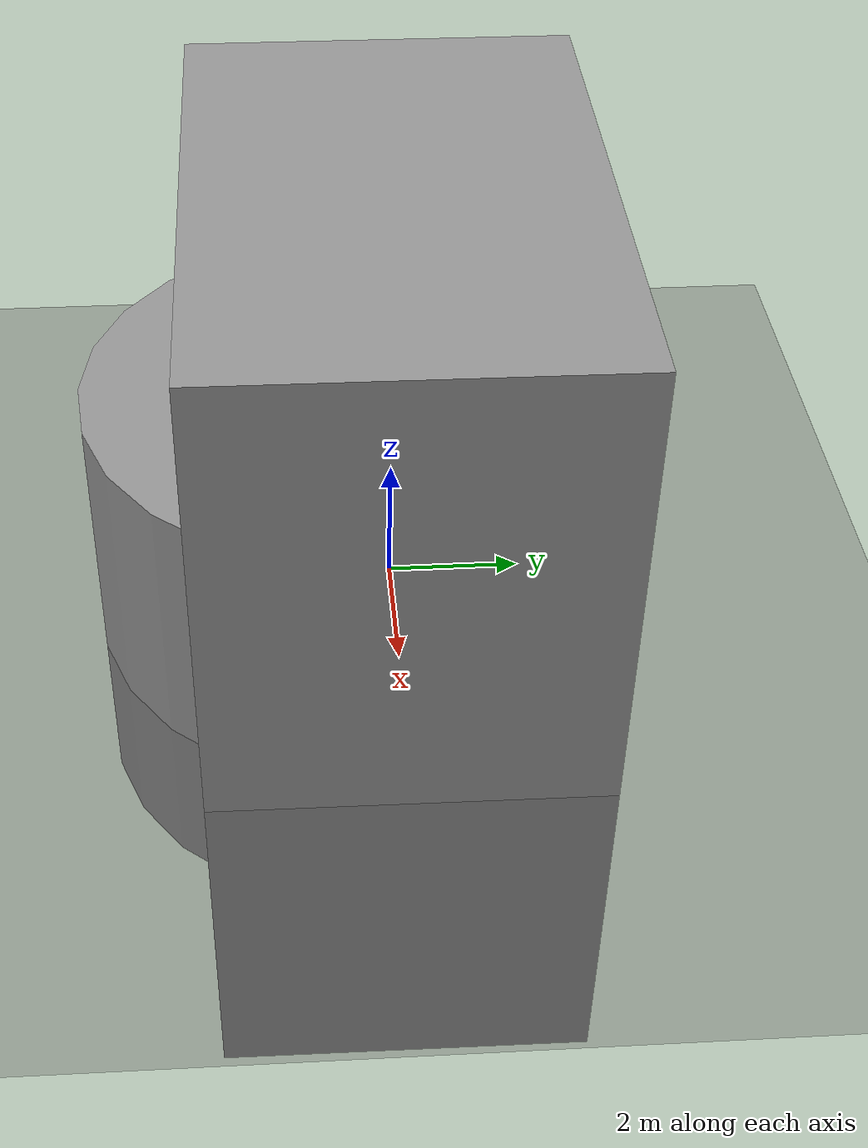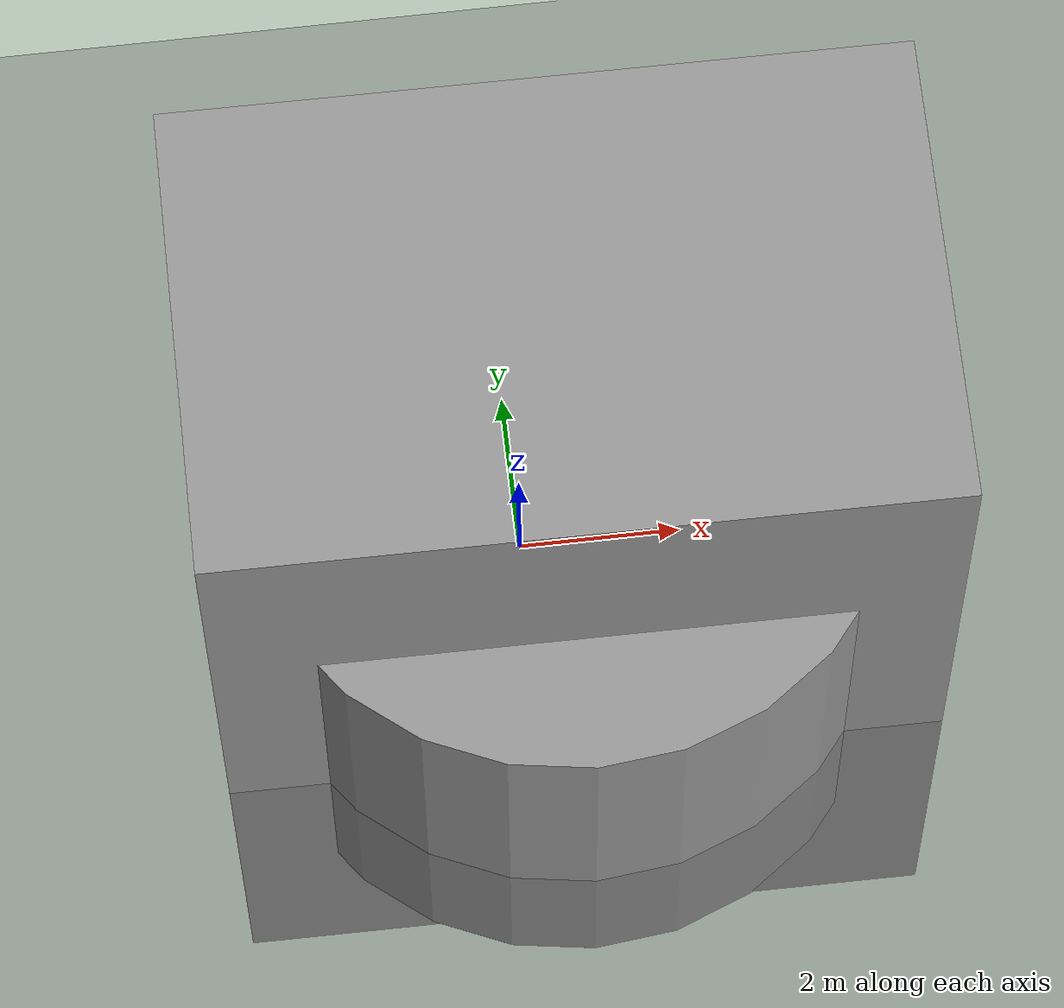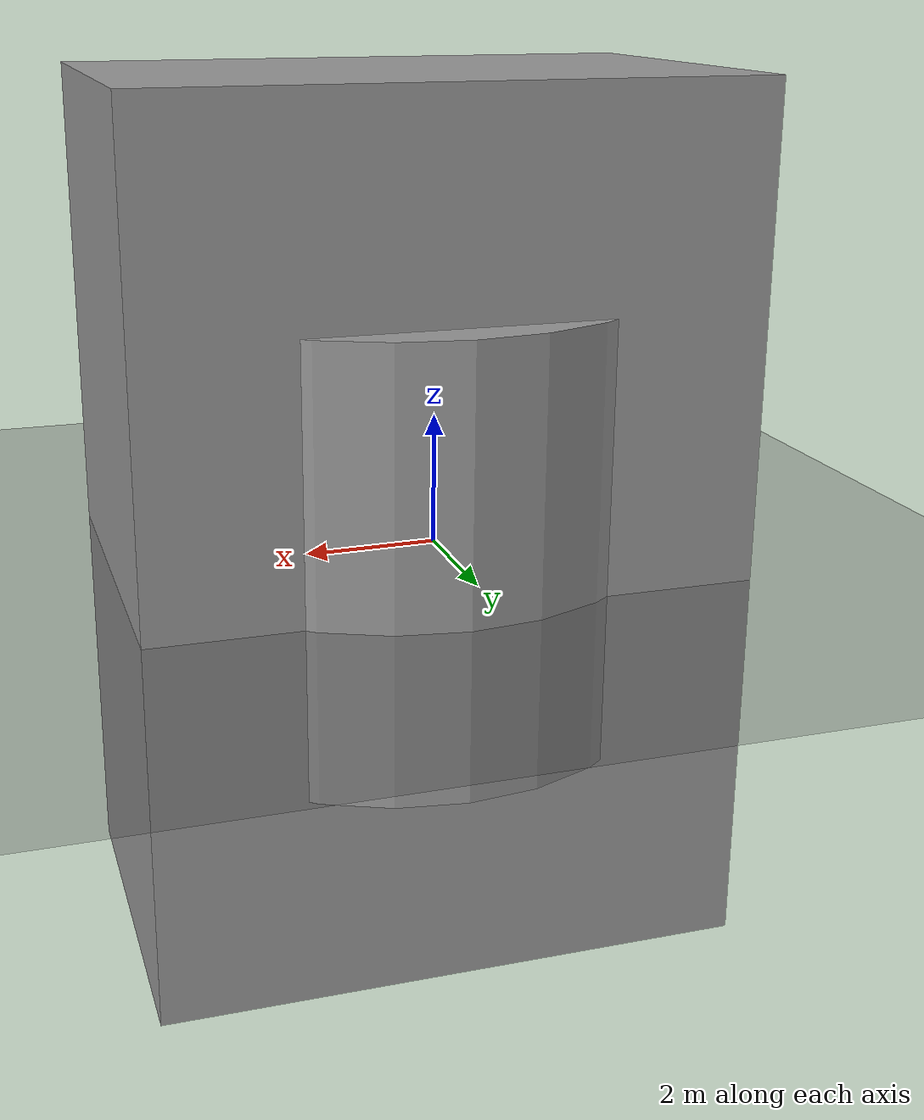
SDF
<sdf version="1.6">
 <world name="default">
  <light name="sun" type="directional">
   <pose>0 0 10 0 -0 0</pose>
   <diffuse>0.8 0.8 0.8 1</diffuse>
   <specular>0.2 0.2 0.2 1</specular>
   <attenuation>
    <range>1000</range>
    <constant>0.9</constant>
    <linear>0.01</linear>
    <quadratic>0.001</quadratic>
   </attenuation>
   <direction>-0.5 0.1 -0.9</direction>
  </light>
  <model name="ground_plane">
   <static>1</static>
   <link name="link">
    <collision name="collision">
     <geometry><plane><normal>0 0 1</normal><size>100 100</size></plane></geometry>
     <surface><friction><ode><mu>100</mu><mu2>50</mu2></ode></friction></surface>
    </collision>
    <visual name="visual">
     <cast_shadows>0</cast_shadows>
     <geometry><plane><normal>0 0 1</normal><size>100 100</size></plane></geometry>
     <material>
      <script><uri>file://media/materials/scripts/gazebo.material</uri><name>Gazebo/DarkGrey</name></script>
     </material>
    </visual>
   </link>
  </model>
  <gravity>0 0 -9.8</gravity>
  <magnetic_field>6e-06 2.3e-05 -4.2e-05</magnetic_field>
  <atmosphere type="adiabatic"/>
  <physics name="default_physics" default="0" type="ode">
   <max_step_size>0.001</max_step_size>
   <real_time_factor>1</real_time_factor>
   <real_time_update_rate>1000</real_time_update_rate>
  </physics>
  <scene><ambient>0.4 0.4 0.4 1</ambient><background>0.7 0.7 0.7 1</background><shadows>1</shadows></scene>
  <spherical_coordinates>
   <surface_model>EARTH_WGS84</surface_model>
   <latitude_deg>0</latitude_deg>
   <longitude_deg>0</longitude_deg>
   <elevation>0</elevation>
   <heading_deg>0</heading_deg>
  </spherical_coordinates>
  <model name="dropbox">
   <link name="link_0">
    <pose>0 -0 0 0 0 -1.56873</pose>
    <inertial>
     <mass>1</mass>
     <inertia>
      <ixx>0.166667</ixx>
      <ixy>0</ixy>
      <ixz>0</ixz>
      <iyy>0.166667</iyy>
      <iyz>0</iyz>
      <izz>0.166667</izz>
     </inertia>
    </inertial>
    <visual name="visual">
     <geometry><mesh><uri>model://dropbox/meshes/dropbox.dae</uri><scale>1 1 1</scale></mesh></geometry>
     <material>
      <lighting>1</lighting>
      <script><uri>file://media/materials/scripts/gazebo.material</uri><name>Gazebo/Grey</name></script>
      <ambient>0 0.3 0.3 1</ambient>
      <diffuse>0 0.7 0.7 1</diffuse>
      <specular>0 0.01 0.01 1</specular>
      <emissive>0 0 0 1</emissive>
     </material>
    </visual>
    <collision name="collision">
     <geometry><mesh><uri>model://dropbox/meshes/dropbox.dae</uri><scale>1 1 1</scale></mesh></geometry>
     <surface>
      <friction>
       <ode><mu>1</mu><mu2>1</mu2><fdir1>0 0 0</fdir1><slip1>0</slip1><slip2>0</slip2></ode>
       <torsional>
        <coefficient>1</coefficient>
        <patch_radius>0</patch_radius>
        <surface_radius>0</surface_radius>
        <use_patch_radius>1</use_patch_radius>
        <ode><slip>0</slip></ode>
       </torsional>
      </friction>
      <bounce><restitution_coefficient>0</restitution_coefficient><threshold>1e+06</threshold></bounce>
      <contact>
       <collide_without_contact>0</collide_without_contact>
       <collide_without_contact_bitmask>1</collide_without_contact_bitmask>
       <collide_bitmask>1</collide_bitmask>
       <ode>
        <soft_cfm>0</soft_cfm>
        <soft_erp>0.2</soft_erp>
        <kp>1e+13</kp>
        <kd>1</kd>
        <max_vel>0.01</max_vel>
        <min_depth>0</min_depth>
       </ode>
       <bullet>
        <split_impulse>1</split_impulse>
        <split_impulse_penetration_threshold>-0.01</split_impulse_penetration_threshold>
        <soft_cfm>0</soft_cfm>
        <soft_erp>0.2</soft_erp>
        <kp>1e+13</kp>
        <kd>1</kd>
       </bullet>
      </contact>
     </surface>
    </collision>
   </link>
   <static>1</static>
   <pose>1 -0.35 0.605 0 -0 1.57</pose>
  </model>
  <model name="dropbox_clone">
   <link name="link_0">
    <pose>0 -0 0 0 0 -1.56873</pose>
    <inertial>
     <mass>1</mass>
     <inertia>
      <ixx>0.166667</ixx>
      <ixy>0</ixy>
      <ixz>0</ixz>
      <iyy>0.166667</iyy>
      <iyz>0</iyz>
      <izz>0.166667</izz>
     </inertia>
    </inertial>
    <visual name="visual">
     <geometry><mesh><uri>model://dropbox/meshes/dropbox.dae</uri><scale>1 1 1</scale></mesh></geometry>
     <material>
      <lighting>1</lighting>
      <script><uri>file://media/materials/scripts/gazebo.material</uri><name>Gazebo/Grey</name></script>
      <ambient>0.3 0 0.1 1</ambient>
      <diffuse>0.7 0 0.2 1</diffuse>
      <specular>0.01 0 0.01 1</specular>
      <emissive>0 0 0 1</emissive>
     </material>
    </visual>
    <collision name="collision">
     <geometry><mesh><uri>model://dropbox/meshes/dropbox.dae</uri><scale>1 1 1</scale></mesh></geometry>
     <surface>
      <friction>
       <ode><mu>1</mu><mu2>1</mu2><fdir1>0 0 0</fdir1><slip1>0</slip1><slip2>0</slip2></ode>
       <torsional>
        <coefficient>1</coefficient>
        <patch_radius>0</patch_radius>
        <surface_radius>0</surface_radius>
        <use_patch_radius>1</use_patch_radius>
        <ode><slip>0</slip></ode>
       </torsional>
      </friction>
      <bounce><restitution_coefficient>0</restitution_coefficient><threshold>1e+06</threshold></bounce>
      <contact>
       <collide_without_contact>0</collide_without_contact>
       <collide_without_contact_bitmask>1</collide_without_contact_bitmask>
       <collide_bitmask>1</collide_bitmask>
       <ode>
        <soft_cfm>0</soft_cfm>
        <soft_erp>0.2</soft_erp>
        <kp>1e+13</kp>
        <kd>1</kd>
        <max_vel>0.01</max_vel>
        <min_depth>0</min_depth>
       </ode>
       <bullet>
        <split_impulse>1</split_impulse>
        <split_impulse_penetration_threshold>-0.01</split_impulse_penetration_threshold>
        <soft_cfm>0</soft_cfm>
        <soft_erp>0.2</soft_erp>
        <kp>1e+13</kp>
        <kd>1</kd>
       </bullet>
      </contact>
     </surface>
    </collision>
   </link>
   <static>1</static>
   <pose>1 0.45 0.605 0 -0 1.57</pose>
  </model>
  <model name="short_table">
   <link name="link_0">
    <inertial>
     <mass>1</mass>
     <inertia>
      <ixx>0.166667</ixx>
      <ixy>0</ixy>
      <ixz>0</ixz>
      <iyy>0.166667</iyy>
      <iyz>0</iyz>
      <izz>0.166667</izz>
     </inertia>
    </inertial>
    <visual name="visual">
     <geometry><mesh><uri>model://short_table/meshes/short_table.dae</uri><scale>1 1 1</scale></mesh></geometry>
     <material>
      <lighting>1</lighting>
      <script><uri>file://media/materials/scripts/gazebo.material</uri><name>Gazebo/DarkGray</name></script>
     </material>
    </visual>
    <collision name="collision">
     <geometry><mesh><uri>model://short_table/meshes/short_table.dae</uri><scale>1 1 1</scale></mesh></geometry>
     <surface>
      <friction>
       <ode><mu>1</mu><mu2>1</mu2><fdir1>0 0 0</fdir1><slip1>0</slip1><slip2>0</slip2></ode>
       <torsional>
        <coefficient>1</coefficient>
        <patch_radius>0</patch_radius>
        <surface_radius>0</surface_radius>
        <use_patch_radius>1</use_patch_radius>
        <ode><slip>0</slip></ode>
       </torsional>
      </friction>
      <bounce><restitution_coefficient>0</restitution_coefficient><threshold>1e+06</threshold></bounce>
      <contact>
       <collide_without_contact>0</collide_without_contact>
       <collide_without_contact_bitmask>1</collide_without_contact_bitmask>
       <collide_bitmask>1</collide_bitmask>
       <ode>
        <soft_cfm>0</soft_cfm>
        <soft_erp>0.2</soft_erp>
        <kp>1e+13</kp>
        <kd>1</kd>
        <max_vel>0.01</max_vel>
        <min_depth>0</min_depth>
       </ode>
       <bullet>
        <split_impulse>1</split_impulse>
        <split_impulse_penetration_threshold>-0.01</split_impulse_penetration_threshold>
        <soft_cfm>0</soft_cfm>
        <soft_erp>0.2</soft_erp>
        <kp>1e+13</kp>
        <kd>1</kd>
       </bullet>
      </contact>
     </surface>
    </collision>
   </link>
   <static>1</static>
   <pose>0.6 0.45 0 0 -0 0</pose>
  </model>
  <model name="short_table_clone">
   <link name="link_0">
    <inertial>
     <mass>1</mass>
     <inertia>
      <ixx>0.166667</ixx>
      <ixy>0</ixy>
      <ixz>0</ixz>
      <iyy>0.166667</iyy>
      <iyz>0</iyz>
      <izz>0.166667</izz>
     </inertia>
    </inertial>
    <visual name="visual">
     <geometry><mesh><uri>model://short_table/meshes/short_table.dae</uri><scale>1 1 1</scale></mesh></geometry>
     <material>
      <lighting>1</lighting>
      <script><uri>file://media/materials/scripts/gazebo.material</uri><name>Gazebo/DarkGray</name></script>
     </material>
    </visual>
    <collision name="collision">
     <geometry><mesh><uri>model://short_table/meshes/short_table.dae</uri><scale>1 1 1</scale></mesh></geometry>
     <surface>
      <friction>
       <ode><mu>1</mu><mu2>1</mu2><fdir1>0 0 0</fdir1><slip1>0</slip1><slip2>0</slip2></ode>
       <torsional>
        <coefficient>1</coefficient>
        <patch_radius>0</patch_radius>
        <surface_radius>0</surface_radius>
        <use_patch_radius>1</use_patch_radius>
        <ode><slip>0</slip></ode>
       </torsional>
      </friction>
      <bounce><restitution_coefficient>0</restitution_coefficient><threshold>1e+06</threshold></bounce>
      <contact>
       <collide_without_contact>0</collide_without_contact>
       <collide_without_contact_bitmask>1</collide_without_contact_bitmask>
       <collide_bitmask>1</collide_bitmask>
       <ode>
        <soft_cfm>0</soft_cfm>
        <soft_erp>0.2</soft_erp>
        <kp>1e+13</kp>
        <kd>1</kd>
        <max_vel>0.01</max_vel>
        <min_depth>0</min_depth>
       </ode>
       <bullet>
        <split_impulse>1</split_impulse>
        <split_impulse_penetration_threshold>-0.01</split_impulse_penetration_threshold>
        <soft_cfm>0</soft_cfm>
        <soft_erp>0.2</soft_erp>
        <kp>1e+13</kp>
        <kd>1</kd>
       </bullet>
      </contact>
     </surface>
    </collision>
   </link>
   <static>1</static>
   <pose>0.6 -0.45 0 0 -0 0</pose>
  </model>
  <model name="short_table_clone_0">
   <link name="link_0">
    <inertial>
     <mass>1</mass>
     <inertia>
      <ixx>0.166667</ixx>
      <ixy>0</ixy>
      <ixz>0</ixz>
      <iyy>0.166667</iyy>
      <iyz>0</iyz>
      <izz>0.166667</izz>
     </inertia>
    </inertial>
    <visual name="visual">
     <geometry><mesh><uri>model://short_table/meshes/short_table.dae</uri><scale>1 1 1</scale></mesh></geometry>
     <material>
      <lighting>1</lighting>
      <script><uri>file://media/materials/scripts/gazebo.material</uri><name>Gazebo/DarkGray</name></script>
     </material>
    </visual>
    <collision name="collision">
     <geometry><mesh><uri>model://short_table/meshes/short_table.dae</uri><scale>1 1 1</scale></mesh></geometry>
     <surface>
      <friction>
       <ode><mu>1</mu><mu2>1</mu2><fdir1>0 0 0</fdir1><slip1>0</slip1><slip2>0</slip2></ode>
       <torsional>
        <coefficient>1</coefficient>
        <patch_radius>0</patch_radius>
        <surface_radius>0</surface_radius>
        <use_patch_radius>1</use_patch_radius>
        <ode><slip>0</slip></ode>
       </torsional>
      </friction>
      <bounce><restitution_coefficient>0</restitution_coefficient><threshold>1e+06</threshold></bounce>
      <contact>
       <collide_without_contact>0</collide_without_contact>
       <collide_without_contact_bitmask>1</collide_without_contact_bitmask>
       <collide_bitmask>1</collide_bitmask>
       <ode>
        <soft_cfm>0</soft_cfm>
        <soft_erp>0.2</soft_erp>
        <kp>1e+13</kp>
        <kd>1</kd>
        <max_vel>0.01</max_vel>
        <min_depth>0</min_depth>
       </ode>
       <bullet>
        <split_impulse>1</split_impulse>
        <split_impulse_penetration_threshold>-0.01</split_impulse_penetration_threshold>
        <soft_cfm>0</soft_cfm>
        <soft_erp>0.2</soft_erp>
        <kp>1e+13</kp>
        <kd>1</kd>
       </bullet>
      </contact>
     </surface>
    </collision>
   </link>
   <static>1</static>
   <pose>1.12 0.45 0 0 -0 0</pose>
  </model>
  <model name="biscuits">
   <link name="biscuits_link">
    <inertial>
     <mass>0.1</mass>
     <inertia><ixx>1</ixx><ixy>0</ixy><ixz>0</ixz><iyy>1</iyy><iyz>0</iyz><izz>1</izz></inertia>
    </inertial>
    <visual name="biscuits_visual">
     <material>
      <script>
       <uri>model://biscuits/materials/scripts</uri>
       <uri>model://biscuits/materials/textures</uri>
       <name>biscuits</name>
      </script>
     </material>
     <geometry><mesh><uri>model://biscuits/meshes/biscuits.dae</uri><scale>1 1 1</scale></mesh></geometry>
    </visual>
    <collision name="biscuits_collision">
     <pose>0.015 0.01 0.075 0 -0 2.2</pose>
     <geometry><box><size>0.19 0.06 0.15</size></box></geometry>
    </collision>
   </link>
   <pose>0.450111 0.557956 0.609995 1e-06 -3e-06 -2.7e-05</pose>
  </model>
  <model name="soap">
   <link name="soap_link">
    <inertial>
     <mass>0.08</mass>
     <inertia><ixx>1</ixx><ixy>0</ixy><ixz>0</ixz><iyy>1</iyy><iyz>0</iyz><izz>1</izz></inertia>
    </inertial>
    <visual name="soap_visual">
     <material>
      <script>
       <uri>model://soap/materials/scripts</uri>
       <uri>model://soap/materials/textures</uri>
       <name>soap</name>
      </script>
     </material>
     <geometry><mesh><uri>model://soap/meshes/soap.dae</uri><scale>1 1 1</scale></mesh></geometry>
    </visual>
    <collision name="soap_collision">
     <pose>0.02 0.002 0.05 0 0 -1.05</pose>
     <geometry><box><size>0.14 0.065 0.1</size></box></geometry>
    </collision>
   </link>
   <pose>0.600418 0.406016 0.609999 1e-06 1e-06 -1.34965</pose>
  </model>
  <model name="soap2">
   <link name="soap2_link">
    <inertial>
     <mass>0.08</mass>
     <inertia><ixx>1</ixx><ixy>0</ixy><ixz>0</ixz><iyy>1</iyy><iyz>0</iyz><izz>1</izz></inertia>
    </inertial>
    <visual name="soap2_visual">
     <material>
      <script>
       <uri>model://soap2/materials/scripts</uri>
       <uri>model://soap2/materials/textures</uri>
       <name>soap2</name>
      </script>
     </material>
     <geometry><mesh><uri>model://soap2/meshes/soap2.dae</uri><scale>1 1 1</scale></mesh></geometry>
    </visual>
    <collision name="soap2_collision">
     <pose>-0.002 0.00502 0.05 0 0 -1</pose>
     <geometry><box><size>0.065 0.04 0.105</size></box></geometry>
    </collision>
   </link>
   <pose>0.356444 0.760511 0.612534 0.000351 -0.001739 -0.00091</pose>
  </model>
  <model name="short_table_0">
   <link name="link_0">
    <inertial>
     <mass>1</mass>
     <inertia>
      <ixx>0.166667</ixx>
      <ixy>0</ixy>
      <ixz>0</ixz>
      <iyy>0.166667</iyy>
      <iyz>0</iyz>
      <izz>0.166667</izz>
     </inertia>
    </inertial>
    <visual name="visual">
     <geometry><mesh><uri>model://short_table/meshes/short_table.dae</uri><scale>1 1 1</scale></mesh></geometry>
     <material>
      <lighting>1</lighting>
      <script><uri>file://media/materials/scripts/gazebo.material</uri><name>Gazebo/DarkGray</name></script>
     </material>
    </visual>
    <collision name="collision">
     <geometry><mesh><uri>model://short_table/meshes/short_table.dae</uri><scale>1 1 1</scale></mesh></geometry>
     <surface>
      <friction>
       <ode><mu>1</mu><mu2>1</mu2><fdir1>0 0 0</fdir1><slip1>0</slip1><slip2>0</slip2></ode>
       <torsional>
        <coefficient>1</coefficient>
        <patch_radius>0</patch_radius>
        <surface_radius>0</surface_radius>
        <use_patch_radius>1</use_patch_radius>
        <ode><slip>0</slip></ode>
       </torsional>
      </friction>
      <bounce><restitution_coefficient>0</restitution_coefficient><threshold>1e+06</threshold></bounce>
      <contact>
       <collide_without_contact>0</collide_without_contact>
       <collide_without_contact_bitmask>1</collide_without_contact_bitmask>
       <collide_bitmask>1</collide_bitmask>
       <ode>
        <soft_cfm>0</soft_cfm>
        <soft_erp>0.2</soft_erp>
        <kp>1e+13</kp>
        <kd>1</kd>
        <max_vel>0.01</max_vel>
        <min_depth>0</min_depth>
       </ode>
       <bullet>
        <split_impulse>1</split_impulse>
        <split_impulse_penetration_threshold>-0.01</split_impulse_penetration_threshold>
        <soft_cfm>0</soft_cfm>
        <soft_erp>0.2</soft_erp>
        <kp>1e+13</kp>
        <kd>1</kd>
       </bullet>
      </contact>
     </surface>
    </collision>
   </link>
   <static>1</static>
   <pose>1.12 -0.45 0 0 -0 0</pose>
  </model>
  <model name="unit_cylinder_0_1">
   <pose>0.53249 -0.467793 0.686623 -0.000105 2.8e-05 -0.02239</pose>
   <link name="link">
    <inertial>
     <mass>1</mass>
     <inertia><ixx>0.145833</ixx><ixy>0</ixy><ixz>0</ixz><iyy>0.145833</iyy><iyz>0</iyz><izz>0.125</izz></inertia>
    </inertial>
    <collision name="collision">
     <geometry><cylinder><radius>4.00226</radius><length>6.52511</length></cylinder></geometry>
    </collision>
    <visual name="visual">
     <geometry><cylinder><radius>4.00226</radius><length>6.52511</length></cylinder></geometry>
     <material>
      <script><name>Gazebo/Grey</name><uri>file://media/materials/scripts/gazebo.material</uri></script>
     </material>
    </visual>
   </link>
  </model>
  <model name="unit_box_0_0">
   <pose>0.524372 0.001536 0.648979 0 1e-06 -0.006063</pose>
   <link name="link">
    <inertial>
     <mass>1</mass>
     <inertia>
      <ixx>0.166667</ixx>
      <ixy>0</ixy>
      <ixz>0</ixz>
      <iyy>0.166667</iyy>
      <iyz>0</iyz>
      <izz>0.166667</izz>
     </inertia>
    </inertial>
    <collision name="collision"><geometry><box><size>8.78854 5.72499 12.8249</size></box></geometry></collision>
    <visual name="visual">
     <geometry><box><size>8.78854 5.72499 12.8249</size></box></geometry>
     <material>
      <script><name>Gazebo/Grey</name><uri>file://media/materials/scripts/gazebo.material</uri></script>
     </material>
    </visual>
   </link>
  </model>
 </world>
</sdf>
